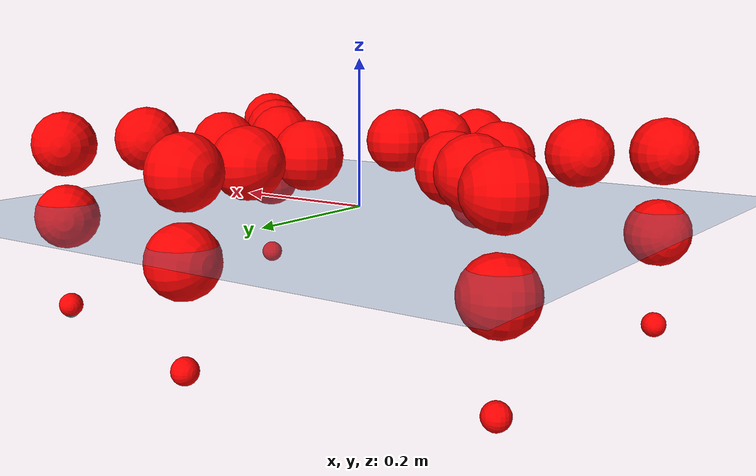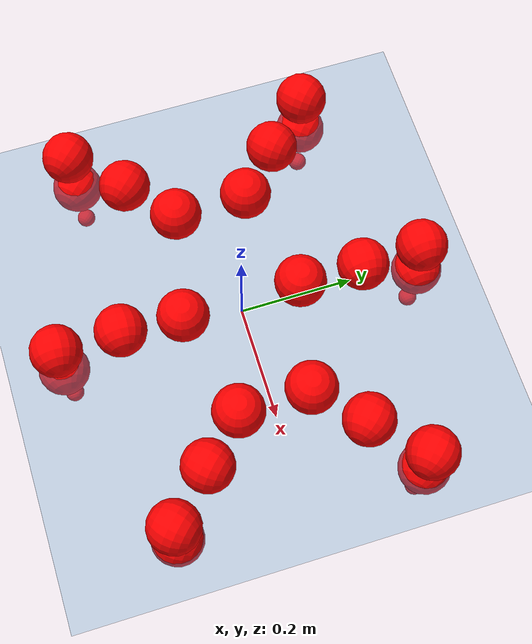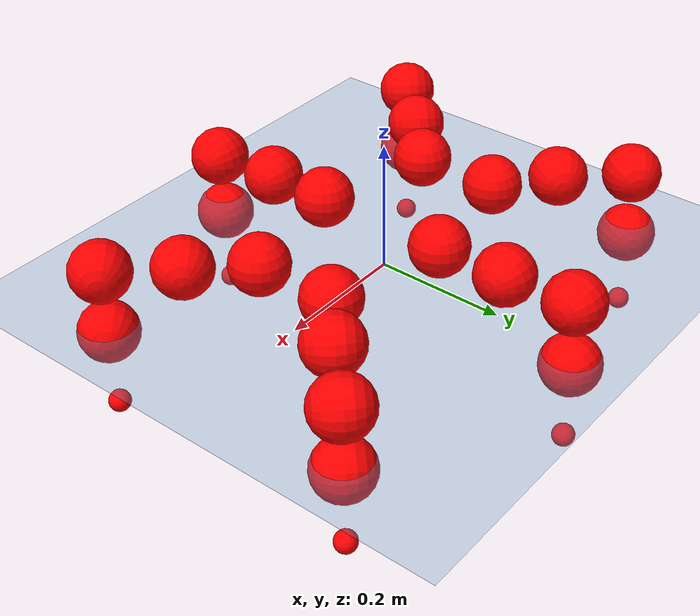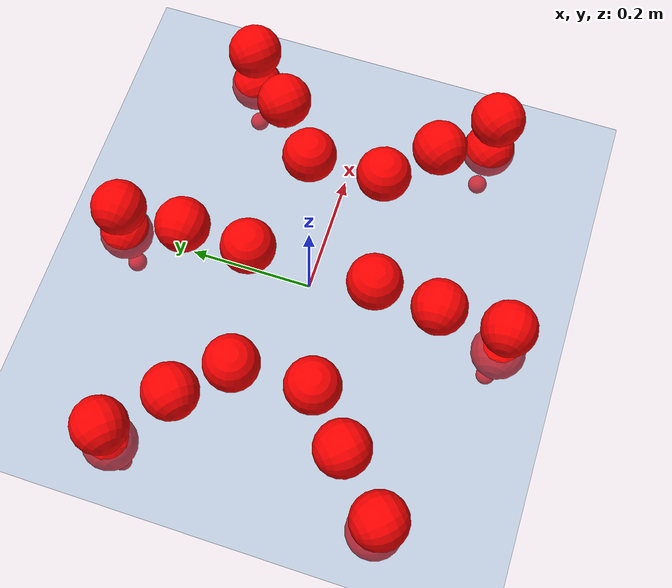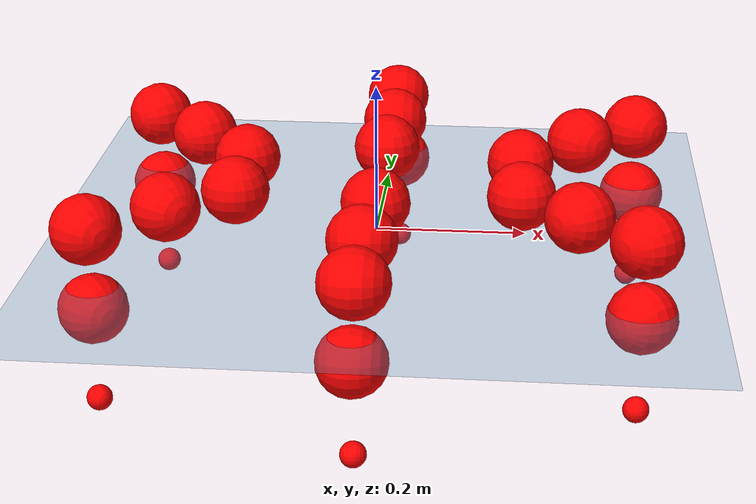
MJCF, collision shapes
<mujoco model="Golem">
  <compiler angle="radian" assetdir="assets" balanceinertia="true" inertiafromgeom="false"/>

  <option timestep="0.005" density="1.2" viscosity="2e-05"/>

  <size nkey="1"/>

  <visual>
    <quality shadowsize="8192"/>
    <map shadowclip="0.5"/>
  </visual>

  <default>
    <default class="/">
      <joint armature="0.01" damping="0.01" frictionloss="0.01"/>
      <geom contype="0" conaffinity="0" group="1" solref="-1000 -80"/>
      <site size="0.01 0.005 0.005" group="5"/>
      <general forcelimited="true" biastype="affine" gainprm="25" biasprm="0 -25 -0.5"/>
      <default class="visual">
        <geom type="mesh" group="2"/>
      </default>
      <default class="collision">
        <geom group="3"/>
      </default>
      <default class="foot">
        <geom size="0.01 0 0" condim="6" group="4" priority="1" solimp="0.015 1 0.01"/>
      </default>
      <default class="reward_collision_sphere">
        <geom group="5" rgba="1 0 0 1"/>
      </default>
    </default>
  </default>

  <asset>
    <texture type="skybox" colorspace="auto" name="//unnamed_texture_0" builtin="gradient" rgb1="0.95 0.95 0.95" rgb2="0.95 0.95 0.95" width="100" height="600"/>
    <texture type="2d" colorspace="auto" name="texplane" builtin="checker" rgb1="0.345 0.575 0.748" rgb2="0.345 0.575 0.748" markrgb="1 1 1" width="512" height="512"/>
    <material name="MatPlane" class="/" texture="texplane" texuniform="true" texrepeat="2 2" specular="0.9"/>
    <mesh name="body" class="/" file="body.stl" scale="0.001 0.001 0.001"/>
    <mesh name="coxa" class="/" file="coxa.stl" scale="0.001 0.001 0.001"/>
    <mesh name="femur" class="/" file="femur.stl" scale="0.001 0.001 0.001"/>
    <mesh name="tibia" class="/" file="tibia.stl" scale="0.001 0.001 0.001"/>
    <mesh name="tarsus" class="/" file="tarsus.stl" scale="0.001 0.001 0.001"/>
  </asset>

  <worldbody>
    <geom name="floor" class="/" size="100 100 0.125" type="plane" group="0" material="MatPlane"/>
    <light name="toplight_shadow" class="/" pos="0 0 5" dir="0.0990148 0.0990148 -0.990148" type="directional" ambient="0.04 0.04 0.04" diffuse="0.55 0.55 0.55" specular="0.12 0.12 0.12"/>
    <light name="toplight_fill" class="/" pos="0 0 5" dir="0.0990148 0.0990148 -0.990148" type="directional" castshadow="false" ambient="0.04 0.04 0.04" diffuse="0.3 0.3 0.3" specular="0.08 0.08 0.08"/>
    <body name="trunk" pos="0.0030537 1.91198e-05 0.001781" quat="0.999995 0.00292749 -0.000334044 -0.00100636">
      <inertial pos="-0.00201491 -0.00739884 -0.00736399" quat="0.999985 0.00527651 0.00167606 0.000205579" mass="5.60553" diaginertia="0.0258423 0.0114692 0.0241147"/>
      <joint name="//unnamed_joint_0" type="free"/>
      <geom name="//unnamed_geom_1" class="/" pos="0 0 0.0750255" quat="1 0 0 0" type="mesh" rgba="0.9 0.9 0.9 1" mesh="body"/>
      <site name="imu" class="/" pos="0.151012 -0.0219826 0.120093" size="0.0112676"/>
      <camera name="track" class="/" pos="0 -2.04182 0" quat="0.707107 0.707107 0 0" mode="trackcom"/>
      <camera name="ego_camera" class="/" pos="0.154321 0 0.117227" quat="-0.5 -0.5 0.5 0.5"/>
      <body name="coxa_RR" pos="-0.20767 -0.0894687 0.0744126" quat="0.382616 -0.00240333 -0.000350894 -0.923904">
        <inertial pos="-0.00200004 4.98711e-05 -0.000109233" quat="0.999286 -0.0234042 -0.0295374 0.00284657" mass="0.243572" diaginertia="0.0221583 0.0104411 0.0202609"/>
        <joint name="coxa_joint_RR" class="/" pos="0 0 0" axis="-0.00597089 -0.000246291 -0.999982" range="-3.14199 3.28759" armature="0.00723971" damping="0" frictionloss="0.0115938"/>
        <geom name="//unnamed_geom_2" class="/" type="mesh" rgba="0.2 0.2 0.2 1" mesh="coxa"/>
        <geom name="//unnamed_geom_3" class="reward_collision_sphere" size="0.0450702" pos="-0.0356124 0 0"/>
        <body name="femur_RR" pos="0.0699798 -0.00491845 0.00236205" quat="0.500272 -0.500059 0.499407 0.500261">
          <inertial pos="-0.00564125 0.000149401 -0.000807426" quat="0.999653 -0.0143825 0.0208154 0.00729741" mass="0.283921" diaginertia="0.0233017 0.0109689 0.0225028"/>
          <joint name="femur_joint_RR" class="/" pos="0 0 0" axis="0.00128873 0.00141098 -0.999998" range="-3.16596 3.17576" armature="0.0108808" damping="0.0488392" frictionloss="0.0114149"/>
          <geom name="//unnamed_geom_4" class="/" type="mesh" rgba="0.9 0.9 0.9 1" mesh="femur"/>
          <geom name="//unnamed_geom_5" class="reward_collision_sphere" size="0.0450702"/>
          <body name="tibia_RR" pos="-0.000190941 -0.116524 -0.00133266" quat="0.000219841 1 5.27464e-05 -0.000361031">
            <inertial pos="0.00329172 0.00281145 0.00196728" quat="1 -0.000465083 -0.000565489 -3.79666e-05" mass="0.260772" diaginertia="0.023821 0.0108629 0.0212856"/>
            <joint name="tibia_joint_RR" class="/" pos="0 0 0" axis="0.0117833 0.0170433 0.999785" range="-3.14856 3.11971" armature="0.0109063" damping="0.0167208" frictionloss="0.0117634"/>
            <geom name="//unnamed_geom_6" class="/" type="mesh" rgba="0.2 0.2 0.2 1" mesh="tibia"/>
            <geom name="//unnamed_geom_7" class="reward_collision_sphere" size="0.0450702"/>
            <body name="tarsus_RR" pos="0.109176 -0.00333288 -0.000377679" quat="1 -0.000753941 0.000359434 -3.81154e-05">
              <inertial pos="0.0757532 -0.00138858 -0.000203549" quat="0.499995 0.500122 0.499746 0.500137" mass="0.266065" diaginertia="0.0212372 0.0100245 0.020958"/>
              <joint name="tarsus_joint_RR" class="/" pos="0 0 0" axis="0.0102501 -0.0138903 0.999851" stiffness="0.00884969" range="-3.1268 3.131" armature="0.0124965" damping="0.0498589" frictionloss="0.0134372"/>
              <geom name="//unnamed_geom_8" class="/" type="mesh" rgba="0.9 0.9 0.9 1" mesh="tarsus"/>
              <geom name="foot_1" class="foot" size="0.00974036" pos="0.132953 0 0" quat="0 -0.707107 0 0.707107"/>
              <geom name="//unnamed_geom_10" class="reward_collision_sphere" size="0.0450702"/>
              <geom name="//unnamed_geom_11" class="reward_collision_sphere" size="0.0169013" pos="0.127611 0 0"/>
              <site name="foot_1" class="foot" pos="0.132953 0 0" quat="0 -0.707107 0 0.707107" size="0.0112676"/>
            </body>
          </body>
        </body>
      </body>
      <body name="coxa_RM" pos="0.00561478 -0.140182 0.0796245" quat="0.707298 6.60256e-06 0.000159608 -0.706915">
        <inertial pos="0.0053163 0.00186363 -0.00180583" quat="0.99999 -0.000845897 -0.00418983 0.00162957" mass="0.263501" diaginertia="0.0219636 0.0102342 0.0208757"/>
        <joint name="coxa_joint_RM" class="/" pos="0 0 0" axis="0.00167671 -0.00103577 -0.999998" range="-3.21353 3.14738" armature="0.0094999" damping="0.00997549" frictionloss="0.0108489"/>
        <geom name="//unnamed_geom_12" class="/" type="mesh" rgba="0.2 0.2 0.2 1" mesh="coxa"/>
        <geom name="//unnamed_geom_13" class="reward_collision_sphere" size="0.0450702" pos="-0.0356124 0 0"/>
        <body name="femur_RM" pos="0.0712636 -0.00689764 -0.00531325" quat="0.499517 -0.500302 0.499992 0.500189">
          <inertial pos="0.00208764 0.00106695 0.000564925" quat="0.999416 0.00686973 -0.0284271 0.0176732" mass="0.312207" diaginertia="0.0258702 0.0123728 0.0236285"/>
          <joint name="femur_joint_RM" class="/" pos="0 0 0" axis="0.00121067 0.00238711 -0.999996" range="-2.99708 3.10653" armature="0.0124605" damping="0.0230776" frictionloss="0.0111622"/>
          <geom name="//unnamed_geom_14" class="/" type="mesh" rgba="0.9 0.9 0.9 1" mesh="femur"/>
          <geom name="//unnamed_geom_15" class="reward_collision_sphere" size="0.0450702"/>
          <body name="tibia_RM" pos="0.00525346 -0.111978 0.00128824" quat="-0.00199274 0.999993 0.000798036 0.00297565">
            <inertial pos="0.0026329 0.000268254 -0.00170626" quat="0.999851 0.0164135 -0.000172167 0.00527537" mass="0.286177" diaginertia="0.0225221 0.0114929 0.0234587"/>
            <joint name="tibia_joint_RM" class="/" pos="0 0 0" axis="0.0060494 -0.000305998 0.999982" stiffness="0.0293527" range="-3.13843 3.12102" armature="0.00997485" damping="0.0213368" frictionloss="0.0102998"/>
            <geom name="//unnamed_geom_16" class="/" type="mesh" rgba="0.2 0.2 0.2 1" mesh="tibia"/>
            <geom name="//unnamed_geom_17" class="reward_collision_sphere" size="0.0450702"/>
            <body name="tarsus_RM" pos="0.103214 0.00097288 0.0035432" quat="0.999996 0.00237111 -0.000472869 -0.001185">
              <inertial pos="0.069891 0.00203508 -0.000127936" quat="0.497614 0.501167 0.497894 0.503303" mass="0.29057" diaginertia="0.0232634 0.0112755 0.0218109"/>
              <joint name="tarsus_joint_RM" class="/" pos="0 0 0" axis="-0.00856051 -0.0208289 0.999746" stiffness="0.000791681" range="-3.08604 2.99361" armature="0.0120482" damping="0.00740005" frictionloss="0.0153623"/>
              <geom name="//unnamed_geom_18" class="/" type="mesh" rgba="0.9 0.9 0.9 1" mesh="tarsus"/>
              <geom name="foot_2" class="foot" size="0.0119717" pos="0.132953 0 0" quat="0 -0.707107 0 0.707107"/>
              <geom name="//unnamed_geom_20" class="reward_collision_sphere" size="0.0450702"/>
              <geom name="//unnamed_geom_21" class="reward_collision_sphere" size="0.0169013" pos="0.127611 0 0"/>
              <site name="foot_2" class="foot" pos="0.132953 0 0" quat="0 -0.707107 0 0.707107" size="0.0112676"/>
            </body>
          </body>
        </body>
      </body>
      <body name="coxa_RF" pos="0.216543 -0.0890133 0.0784822" quat="0.92454 -0.00195377 -0.000703516 -0.38108">
        <inertial pos="-0.00565739 -0.00591968 0.000292239" quat="0.999979 0.0047043 0.00140833 0.00430911" mass="0.292118" diaginertia="0.0228156 0.0112682 0.0221865"/>
        <joint name="coxa_joint_RF" class="/" pos="0 0 0" axis="-0.000218944 0.000439138 -1" stiffness="0.038331" range="-3.14515 3.2582" armature="0.0108885" damping="0" frictionloss="0.0125902"/>
        <geom name="//unnamed_geom_22" class="/" type="mesh" rgba="0.2 0.2 0.2 1" mesh="coxa"/>
        <geom name="//unnamed_geom_23" class="reward_collision_sphere" size="0.0450702" pos="-0.0356124 0 0"/>
        <body name="femur_RF" pos="0.068509 -0.000429106 0.00341173" quat="0.501238 -0.499684 0.501007 0.498065">
          <inertial pos="0.00124682 0.00139674 -0.00677124" quat="0.999736 0.0138496 0.00499798 0.0176233" mass="0.301751" diaginertia="0.0257531 0.0120474 0.0257489"/>
          <joint name="femur_joint_RF" class="/" pos="0 0 0" axis="-0.0048184 -0.035116 -0.999372" range="-3.18242 3.16356" armature="0.00685715" damping="0.0221966" frictionloss="0.00932641"/>
          <geom name="//unnamed_geom_24" class="/" type="mesh" rgba="0.9 0.9 0.9 1" mesh="femur"/>
          <geom name="//unnamed_geom_25" class="reward_collision_sphere" size="0.0450702"/>
          <body name="tibia_RF" pos="-0.00334466 -0.110635 0.000686117" quat="-0.000481691 1 0.000114764 9.09972e-06">
            <inertial pos="-0.000907518 0.00101778 -0.000891392" quat="0.999825 -0.017833 -0.00457485 0.00322123" mass="0.291217" diaginertia="0.0253815 0.0117148 0.0209862"/>
            <joint name="tibia_joint_RF" class="/" pos="0 0 0" axis="0.00382237 -0.000175594 0.999993" stiffness="0.0101137" range="-3.14083 3.0193" armature="0.0126472" damping="0.00847501" frictionloss="0.0117825"/>
            <geom name="//unnamed_geom_26" class="/" type="mesh" rgba="0.2 0.2 0.2 1" mesh="tibia"/>
            <geom name="//unnamed_geom_27" class="reward_collision_sphere" size="0.0450702"/>
            <body name="tarsus_RF" pos="0.101638 -0.000248126 -0.000480723" quat="0.999994 0.00229619 0.000905817 -0.00247486">
              <inertial pos="0.0701832 -0.000121065 0.000337249" quat="0.493075 0.497851 0.507775 0.501184" mass="0.289774" diaginertia="0.0240833 0.0110679 0.0240766"/>
              <joint name="tarsus_joint_RF" class="/" pos="0 0 0" axis="-0.00612411 0.00102909 0.999981" range="-3.14305 3.09873" armature="0.0112249" damping="0.0157566" frictionloss="0.0102689"/>
              <geom name="//unnamed_geom_28" class="/" type="mesh" rgba="0.9 0.9 0.9 1" mesh="tarsus"/>
              <geom name="foot_3" class="foot" size="0.00907472" pos="0.132953 0 0" quat="0 -0.707107 0 0.707107"/>
              <geom name="//unnamed_geom_30" class="reward_collision_sphere" size="0.0450702"/>
              <geom name="//unnamed_geom_31" class="reward_collision_sphere" size="0.0169013" pos="0.127611 0 0"/>
              <site name="foot_3" class="foot" pos="0.132953 0 0" quat="0 -0.707107 0 0.707107" size="0.0112676"/>
            </body>
          </body>
        </body>
      </body>
      <body name="coxa_LR" pos="-0.211737 0.0890002 0.071593" quat="0.383312 0.00225063 -0.000955349 0.923616">
        <inertial pos="-0.000439056 -0.00173018 0.00136009" quat="0.999987 -0.00053441 0.00165968 0.00474952" mass="0.29124" diaginertia="0.0253089 0.0115819 0.0244604"/>
        <joint name="coxa_joint_LR" class="/" pos="0 0 0" axis="-0.0102608 -0.0215834 -0.999714" range="-3.22393 3.13905" armature="0.0113906" damping="0" frictionloss="0.0116169"/>
        <geom name="//unnamed_geom_32" class="/" type="mesh" rgba="0.2 0.2 0.2 1" mesh="coxa"/>
        <geom name="//unnamed_geom_33" class="reward_collision_sphere" size="0.0450702" pos="-0.0356124 0 0"/>
        <body name="femur_LR" pos="0.0653213 0.000843218 0.00598866" quat="0.499769 -0.499978 0.500284 0.49997">
          <inertial pos="0.000907938 -0.00249139 -0.000704945" quat="0.999999 -0.000377087 -0.00104728 -0.00064619" mass="0.287799" diaginertia="0.0232794 0.0112 0.021579"/>
          <joint name="femur_joint_LR" class="/" pos="0 0 0" axis="0.013561 0.00540466 0.999893" stiffness="0.0149775" range="-3.03244 3.03506" armature="0.0114988" damping="0.0332821" frictionloss="0.0105078"/>
          <geom name="//unnamed_geom_34" class="/" type="mesh" rgba="0.9 0.9 0.9 1" mesh="femur"/>
          <geom name="//unnamed_geom_35" class="reward_collision_sphere" size="0.0450702"/>
          <body name="tibia_LR" pos="0.00339234 -0.114363 -0.000532345" quat="-0.000544202 1 -0.000156746 0.000482339">
            <inertial pos="0.00716442 -0.00105807 0.00586677" quat="0.999931 0.00310597 -0.00195645 -0.0111403" mass="0.285797" diaginertia="0.0230588 0.0101212 0.0221001"/>
            <joint name="tibia_joint_LR" class="/" pos="0 0 0" axis="-0.00541611 0.00172228 -0.999984" stiffness="0.0127217" range="-3.25578 3.06582" armature="0.0117078" damping="0.00265894" frictionloss="0.0108676"/>
            <geom name="//unnamed_geom_36" class="/" type="mesh" rgba="0.2 0.2 0.2 1" mesh="tibia"/>
            <geom name="//unnamed_geom_37" class="reward_collision_sphere" size="0.0450702"/>
            <body name="tarsus_LR" pos="0.107357 0.00135325 0.00143156" quat="1 -3.71942e-05 -5.70094e-05 4.18223e-06">
              <inertial pos="0.0724548 -2.91166e-05 0.00144143" quat="0.506823 0.499472 0.499116 0.494511" mass="0.268346" diaginertia="0.0223727 0.0100565 0.0206"/>
              <joint name="tarsus_joint_LR" class="/" pos="0 0 0" axis="0.0142119 0.0262595 -0.999554" range="-3.18621 3.2115" armature="0.010009" damping="0.0197276" frictionloss="0.00929343"/>
              <geom name="//unnamed_geom_38" class="/" type="mesh" rgba="0.9 0.9 0.9 1" mesh="tarsus"/>
              <geom name="foot_4" class="foot" size="0.0118841" pos="0.132953 0 0" quat="0.707107 0 -0.707107 0"/>
              <geom name="//unnamed_geom_40" class="reward_collision_sphere" size="0.0450702"/>
              <geom name="//unnamed_geom_41" class="reward_collision_sphere" size="0.0169013" pos="0.127611 0 0"/>
              <site name="foot_4" class="foot" pos="0.132953 0 0" quat="0.707107 0 -0.707107 0" size="0.0112676"/>
            </body>
          </body>
        </body>
      </body>
      <body name="coxa_LM" pos="0.00258831 0.139003 0.076631" quat="0.707103 -3.16053e-05 -3.4072e-05 0.707111">
        <inertial pos="-0.00569767 -0.00689383 0.00125286" quat="0.999999 0.000488288 -0.00122715 -0.000530108" mass="0.289869" diaginertia="0.0242019 0.0111588 0.0225649"/>
        <joint name="coxa_joint_LM" class="/" pos="0 0 0" axis="-0.0106825 0.00199023 -0.999941" stiffness="0.0167013" range="-3.17511 3.17524" armature="0.00861915" damping="0.0400383" frictionloss="0.010379"/>
        <geom name="//unnamed_geom_42" class="/" type="mesh" rgba="0.2 0.2 0.2 1" mesh="coxa"/>
        <geom name="//unnamed_geom_43" class="reward_collision_sphere" size="0.0450702" pos="-0.0356124 0 0"/>
        <body name="femur_LM" pos="0.0756062 -0.00228789 0.000619227" quat="0.498615 -0.502772 0.499253 0.49935">
          <inertial pos="0.00239524 -0.00166085 -0.00237466" quat="0.999835 -0.0131423 -0.0119895 0.00371837" mass="0.293091" diaginertia="0.0229884 0.011675 0.023109"/>
          <joint name="femur_joint_LM" class="/" pos="0 0 0" axis="0.00195093 0.00706675 0.999973" range="-3.13188 3.1384" armature="0.0152381" damping="0.0282773" frictionloss="0.0124451"/>
          <geom name="//unnamed_geom_44" class="/" type="mesh" rgba="0.9 0.9 0.9 1" mesh="femur"/>
          <geom name="//unnamed_geom_45" class="reward_collision_sphere" size="0.0450702"/>
          <body name="tibia_LM" pos="6.19766e-05 -0.107732 0.00318481" quat="0.000396687 1 -5.58627e-05 -0.000717179">
            <inertial pos="0.00105231 -0.00500246 -0.00054245" quat="0.99999 -0.000508005 -0.00291927 -0.00332332" mass="0.299918" diaginertia="0.0242366 0.0107385 0.0208416"/>
            <joint name="tibia_joint_LM" class="/" pos="0 0 0" axis="0.00693174 -0.00562219 -0.99996" range="-3.15467 3.07624" armature="0.0114073" damping="0.0297605" frictionloss="0.0122823"/>
            <geom name="//unnamed_geom_46" class="/" type="mesh" rgba="0.2 0.2 0.2 1" mesh="tibia"/>
            <geom name="//unnamed_geom_47" class="reward_collision_sphere" size="0.0450702"/>
            <body name="tarsus_LM" pos="0.101233 0.00299965 0.00113378" quat="1 9.79149e-05 -0.000129916 -6.65147e-05">
              <inertial pos="0.068253 -0.000337563 0.000397008" quat="0.496315 0.500142 0.503838 0.499677" mass="0.244326" diaginertia="0.0219326 0.0106799 0.021973"/>
              <joint name="tarsus_joint_LM" class="/" pos="0 0 0" axis="1.52243e-05 -6.85099e-05 -1" range="-3.13351 3.19172" armature="0.0105437" damping="0" frictionloss="0.0112651"/>
              <geom name="//unnamed_geom_48" class="/" type="mesh" rgba="0.9 0.9 0.9 1" mesh="tarsus"/>
              <geom name="foot_5" class="foot" size="0.0117697" pos="0.132953 0 0" quat="0.707107 0 -0.707107 0"/>
              <geom name="//unnamed_geom_50" class="reward_collision_sphere" size="0.0450702"/>
              <geom name="//unnamed_geom_51" class="reward_collision_sphere" size="0.0169013" pos="0.127611 0 0"/>
              <site name="foot_5" class="foot" pos="0.132953 0 0" quat="0.707107 0 -0.707107 0" size="0.0112676"/>
            </body>
          </body>
        </body>
      </body>
      <body name="coxa_LF" pos="0.213203 0.0870974 0.0762749" quat="0.923856 -1.67397e-05 0.000156662 0.382741">
        <inertial pos="-0.000341739 0.00181537 0.000453655" quat="1 0.000287656 9.26242e-05 6.83983e-05" mass="0.295188" diaginertia="0.0238612 0.0107997 0.0213275"/>
        <joint name="coxa_joint_LF" class="/" pos="0 0 0" axis="0.000271415 0.0316361 -0.999499" stiffness="0.00131179" range="-3.09335 3.1433" armature="0.0116962" damping="0.0113087" frictionloss="0.011453"/>
        <geom name="//unnamed_geom_52" class="/" type="mesh" rgba="0.2 0.2 0.2 1" mesh="coxa"/>
        <geom name="//unnamed_geom_53" class="reward_collision_sphere" size="0.0450702" pos="-0.0356124 0 0"/>
        <body name="femur_LF" pos="0.0714554 -0.00711751 0.00740512" quat="0.49949 -0.499853 0.499914 0.500742">
          <inertial pos="0.00461223 -0.0003583 -0.00151558" quat="0.999978 -0.00212172 -0.0060769 0.00143579" mass="0.27982" diaginertia="0.0236526 0.0117965 0.0235579"/>
          <joint name="femur_joint_LF" class="/" pos="0 0 0" axis="-0.0167826 0.0139169 0.999762" range="-3.15055 3.24787" armature="0.0134576" damping="0.0177228" frictionloss="0.0124096"/>
          <geom name="//unnamed_geom_54" class="/" type="mesh" rgba="0.9 0.9 0.9 1" mesh="femur"/>
          <geom name="//unnamed_geom_55" class="reward_collision_sphere" size="0.0450702"/>
          <body name="tibia_LF" pos="0.00589205 -0.113351 -0.000490559" quat="-0.000123216 1 0.000552483 -0.000512895">
            <inertial pos="0.00116964 -0.00042926 0.0023065" quat="0.999613 0.00803862 0.0193987 -0.018251" mass="0.294533" diaginertia="0.02376 0.0112875 0.0221191"/>
            <joint name="tibia_joint_LF" class="/" pos="0 0 0" axis="0.00131171 0.0026495 -0.999996" range="-3.11933 3.1608" armature="0.0154282" damping="0.035595" frictionloss="0.0116781"/>
            <geom name="//unnamed_geom_56" class="/" type="mesh" rgba="0.2 0.2 0.2 1" mesh="tibia"/>
            <geom name="//unnamed_geom_57" class="reward_collision_sphere" size="0.0450702"/>
            <body name="tarsus_LF" pos="0.101352 -0.000151344 -0.000457546" quat="0.999993 -0.00350137 0.000311061 0.00102098">
              <inertial pos="0.0674982 0.00523231 0.00204914" quat="0.492756 0.501418 0.504637 0.501112" mass="0.306267" diaginertia="0.0241916 0.0116187 0.0224882"/>
              <joint name="tarsus_joint_LF" class="/" pos="0 0 0" axis="-0.0212496 0.0133444 -0.999685" stiffness="0.00566648" range="-3.23371 3.18625" armature="0.0124492" damping="0" frictionloss="0.0106729"/>
              <geom name="//unnamed_geom_58" class="/" type="mesh" rgba="0.9 0.9 0.9 1" mesh="tarsus"/>
              <geom name="foot_6" class="foot" size="0.0129187" pos="0.132953 0 0" quat="0.707107 0 -0.707107 0"/>
              <geom name="//unnamed_geom_60" class="reward_collision_sphere" size="0.0450702"/>
              <geom name="//unnamed_geom_61" class="reward_collision_sphere" size="0.0169013" pos="0.127611 0 0"/>
              <site name="foot_6" class="foot" pos="0.132953 0 0" quat="0.707107 0 -0.707107 0" size="0.0112676"/>
            </body>
          </body>
        </body>
      </body>
    </body>
  </worldbody>

  <contact>
    <pair class="/" geom1="floor" geom2="foot_1" name="//unnamed_contact_0"/>
    <pair class="/" geom1="floor" geom2="foot_2" name="//unnamed_contact_1"/>
    <pair class="/" geom1="floor" geom2="foot_3" name="//unnamed_contact_2"/>
    <pair class="/" geom1="floor" geom2="foot_4" name="//unnamed_contact_3"/>
    <pair class="/" geom1="floor" geom2="foot_5" name="//unnamed_contact_4"/>
    <pair class="/" geom1="floor" geom2="foot_6" name="//unnamed_contact_5"/>
  </contact>

  <actuator>
    <general name="coxa_joint_RR" class="/" joint="coxa_joint_RR" forcerange="-8.92238 8.92238" gainprm="26.109" biasprm="0 -26.109 -0.574867"/>
    <general name="femur_joint_RR" class="/" joint="femur_joint_RR" forcerange="-8.10924 8.10924" gainprm="26.109" biasprm="0 -26.109 -0.574867"/>
    <general name="tibia_joint_RR" class="/" joint="tibia_joint_RR" forcerange="-8.71957 8.71957" gainprm="26.109" biasprm="0 -26.109 -0.574867"/>
    <general name="tarsus_joint_RR" class="/" joint="tarsus_joint_RR" forcerange="-7.73187 7.73187" gainprm="26.109" biasprm="0 -26.109 -0.574867"/>
    <general name="coxa_joint_RM" class="/" joint="coxa_joint_RM" forcerange="-7.81434 7.81434" gainprm="26.109" biasprm="0 -26.109 -0.574867"/>
    <general name="femur_joint_RM" class="/" joint="femur_joint_RM" forcerange="-9.3585 9.3585" gainprm="26.109" biasprm="0 -26.109 -0.574867"/>
    <general name="tibia_joint_RM" class="/" joint="tibia_joint_RM" forcerange="-8.25974 8.25974" gainprm="26.109" biasprm="0 -26.109 -0.574867"/>
    <general name="tarsus_joint_RM" class="/" joint="tarsus_joint_RM" forcerange="-8.48502 8.48502" gainprm="26.109" biasprm="0 -26.109 -0.574867"/>
    <general name="coxa_joint_RF" class="/" joint="coxa_joint_RF" forcerange="-9.52407 9.52407" gainprm="26.109" biasprm="0 -26.109 -0.574867"/>
    <general name="femur_joint_RF" class="/" joint="femur_joint_RF" forcerange="-9.21964 9.21964" gainprm="26.109" biasprm="0 -26.109 -0.574867"/>
    <general name="tibia_joint_RF" class="/" joint="tibia_joint_RF" forcerange="-7.35559 7.35559" gainprm="26.109" biasprm="0 -26.109 -0.574867"/>
    <general name="tarsus_joint_RF" class="/" joint="tarsus_joint_RF" forcerange="-8.24079 8.24079" gainprm="26.109" biasprm="0 -26.109 -0.574867"/>
    <general name="coxa_joint_LR" class="/" joint="coxa_joint_LR" forcerange="-7.51435 7.51435" gainprm="26.109" biasprm="0 -26.109 -0.574867"/>
    <general name="femur_joint_LR" class="/" joint="femur_joint_LR" forcerange="-8.53416 8.53416" gainprm="26.109" biasprm="0 -26.109 -0.574867"/>
    <general name="tibia_joint_LR" class="/" joint="tibia_joint_LR" forcerange="-10.0897 10.0897" gainprm="26.109" biasprm="0 -26.109 -0.574867"/>
    <general name="tarsus_joint_LR" class="/" joint="tarsus_joint_LR" forcerange="-6.1411 6.1411" gainprm="26.109" biasprm="0 -26.109 -0.574867"/>
    <general name="coxa_joint_LM" class="/" joint="coxa_joint_LM" forcerange="-8.02203 8.02203" gainprm="26.109" biasprm="0 -26.109 -0.574867"/>
    <general name="femur_joint_LM" class="/" joint="femur_joint_LM" forcerange="-8.17508 8.17508" gainprm="26.109" biasprm="0 -26.109 -0.574867"/>
    <general name="tibia_joint_LM" class="/" joint="tibia_joint_LM" forcerange="-8.45515 8.45515" gainprm="26.109" biasprm="0 -26.109 -0.574867"/>
    <general name="tarsus_joint_LM" class="/" joint="tarsus_joint_LM" forcerange="-8.11352 8.11352" gainprm="26.109" biasprm="0 -26.109 -0.574867"/>
    <general name="coxa_joint_LF" class="/" joint="coxa_joint_LF" forcerange="-8.45811 8.45811" gainprm="26.109" biasprm="0 -26.109 -0.574867"/>
    <general name="femur_joint_LF" class="/" joint="femur_joint_LF" forcerange="-8.17746 8.17746" gainprm="26.109" biasprm="0 -26.109 -0.574867"/>
    <general name="tibia_joint_LF" class="/" joint="tibia_joint_LF" forcerange="-8.49035 8.49035" gainprm="26.109" biasprm="0 -26.109 -0.574867"/>
    <general name="tarsus_joint_LF" class="/" joint="tarsus_joint_LF" forcerange="-7.5266 7.5266" gainprm="26.109" biasprm="0 -26.109 -0.574867"/>
  </actuator>

  <sensor>
    <gyro site="imu" name="imu_angular_velocity"/>
    <velocimeter site="imu" name="imu_linear_velocity"/>
    <framelinvel objtype="site" objname="foot_1" name="foot_1_global_linear_velocity"/>
    <framelinvel objtype="site" objname="foot_2" name="foot_2_global_linear_velocity"/>
    <framelinvel objtype="site" objname="foot_3" name="foot_3_global_linear_velocity"/>
    <framelinvel objtype="site" objname="foot_4" name="foot_4_global_linear_velocity"/>
    <framelinvel objtype="site" objname="foot_5" name="foot_5_global_linear_velocity"/>
    <framelinvel objtype="site" objname="foot_6" name="foot_6_global_linear_velocity"/>
  </sensor>

  <keyframe>
    <key name="home" qpos="0 0 0.1457 1 0 0 0 0 0 0 0 0 0 0 0 0 0 0 0 0 0 0 0 0 0 0 0 0 0 0 0"/>
  </keyframe>
</mujoco>
